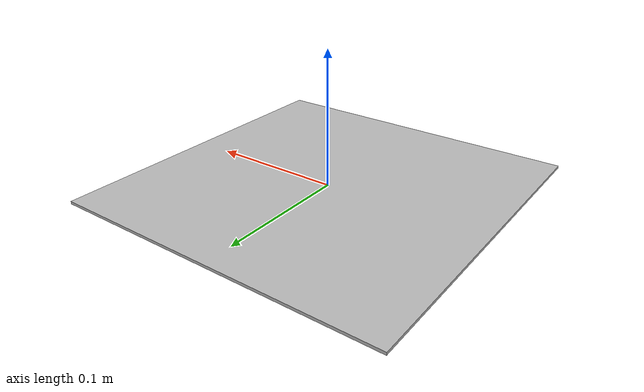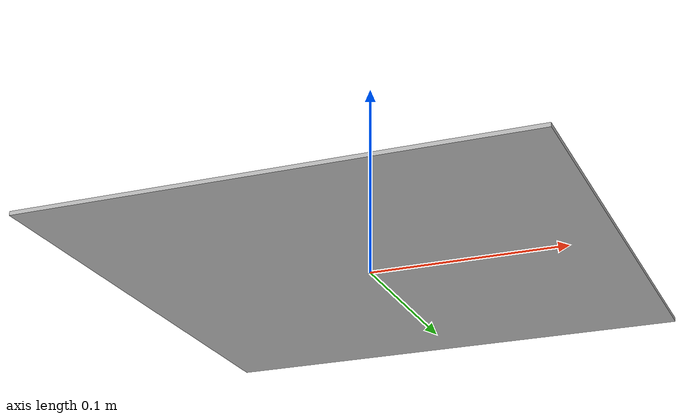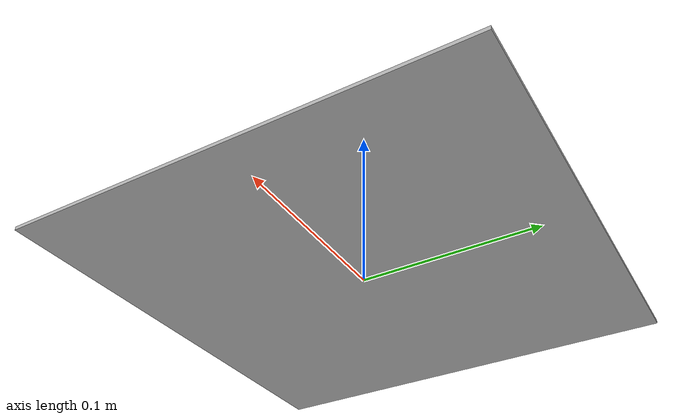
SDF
<sdf version="1.5">
  <model name="fiducial">
    <static>false</static>
    <link name="link">
      <pose>0.0 0.0 0.001 0.0 0.0 0.0</pose>
      <inertial>
        <mass>0.0001</mass>
      </inertial>
      <collision name="collision">
        <geometry>
          <!-- Box or plane geometry is used -->
          <box>
            <size>0.25 0.25 0.002</size>
          </box>
        </geometry>
      </collision>
      <visual name="visual">
        <geometry>
          <!-- Box or plane geometry is used -->
          <box>
            <size>0.25 0.25 0.002</size>
          </box>
        </geometry>
        <material>
          <script>
            <name>marker_id_9</name>
            <uri>model://fiducial/materials/scripts/</uri>
            <uri>model://fiducial/materials/textures/</uri>
          </script>
        </material>
      </visual>
    </link>
  </model>
</sdf>
